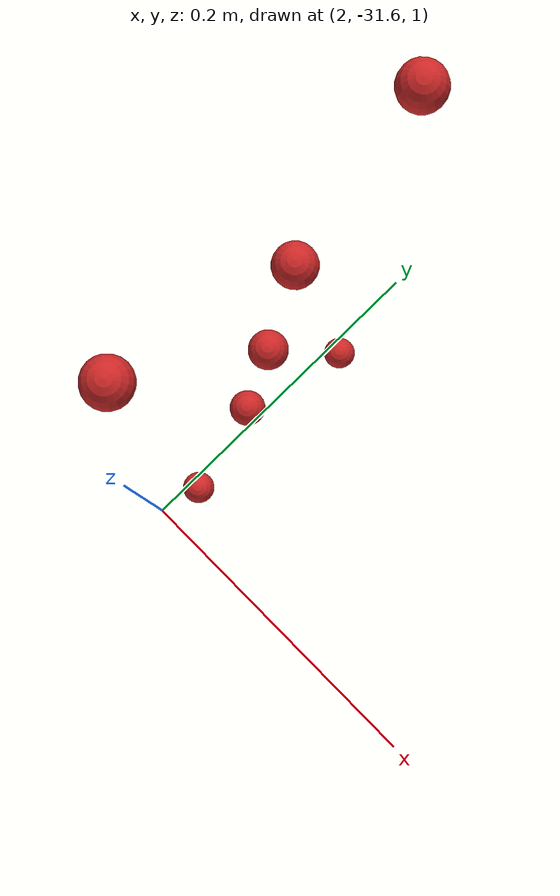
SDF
<sdf version="1.4">
 <world name="default">
  <model name="ground_plane">
   <static>1</static>
   <link name="link">
    <collision name="collision">
     <geometry><plane><normal>0 0 1</normal><size>100 100</size></plane></geometry>
     <surface><friction><ode><mu>100</mu><mu2>50</mu2></ode></friction></surface>
    </collision>
    <visual name="visual">
     <cast_shadows>0</cast_shadows>
     <geometry><plane><normal>0 0 1</normal><size>100 100</size></plane></geometry>
     <material>
      <script><uri>file://media/materials/scripts/gazebo.material</uri><name>Gazebo/Grey</name></script>
     </material>
    </visual>
    <velocity_decay><linear>0</linear><angular>0</angular></velocity_decay>
   </link>
  </model>
  <model name="apple394">
   <link name="my_apple">
    <inertial>
     <pose>2 0 0 0 -0 0</pose>
     <mass>1</mass>
     <inertia><ixx>1</ixx><ixy>0</ixy><ixz>0</ixz><iyy>1</iyy><iyz>0</iyz><izz>1</izz></inertia>
    </inertial>
    <collision name="my_apple_collision">
     <pose>2 0 1 0 -0 0</pose>
     <geometry><sphere><radius>0.01</radius></sphere></geometry>
    </collision>
    <visual name="my_apple_visual">
     <pose>2 0 1 0 -0 0</pose>
     <geometry><sphere><radius>0.01</radius></sphere></geometry>
     <material><script><name>Gazebo/Red</name><uri>__default__</uri></script></material>
    </visual>
    <gravity>0</gravity>
    <velocity_decay><linear>0</linear><angular>0</angular></velocity_decay>
   </link>
   <pose>0 -31.5741 -0.051035 0 -0 0</pose>
   <static>0</static>
  </model>
  <model name="apple396">
   <link name="my_apple">
    <inertial>
     <pose>2 0 0 0 -0 0</pose>
     <mass>1</mass>
     <inertia><ixx>1</ixx><ixy>0</ixy><ixz>0</ixz><iyy>1</iyy><iyz>0</iyz><izz>1</izz></inertia>
    </inertial>
    <collision name="my_apple_collision">
     <pose>2 0 1 0 -0 0</pose>
     <geometry><sphere><radius>0.01</radius></sphere></geometry>
    </collision>
    <visual name="my_apple_visual">
     <pose>2 0 1 0 -0 0</pose>
     <geometry><sphere><radius>0.01</radius></sphere></geometry>
     <material><script><name>Gazebo/Red</name><uri>__default__</uri></script></material>
    </visual>
    <gravity>0</gravity>
    <velocity_decay><linear>0</linear><angular>0</angular></velocity_decay>
   </link>
   <pose>0 -31.5238 0.074887 0 -0 0</pose>
   <static>0</static>
  </model>
  <model name="apple397">
   <link name="my_apple">
    <inertial>
     <pose>2 0 0 0 -0 0</pose>
     <mass>1</mass>
     <inertia><ixx>1</ixx><ixy>0</ixy><ixz>0</ixz><iyy>1</iyy><iyz>0</iyz><izz>1</izz></inertia>
    </inertial>
    <collision name="my_apple_collision">
     <pose>2 0 1 0 -0 0</pose>
     <geometry><sphere><radius>0.01</radius></sphere></geometry>
    </collision>
    <visual name="my_apple_visual">
     <pose>2 0 1 0 -0 0</pose>
     <geometry><sphere><radius>0.01</radius></sphere></geometry>
     <material><script><name>Gazebo/Red</name><uri>__default__</uri></script></material>
    </visual>
    <gravity>0</gravity>
    <velocity_decay><linear>0</linear><angular>0</angular></velocity_decay>
   </link>
   <pose>0 -31.5039 0.188023 0 -0 0</pose>
   <static>0</static>
  </model>
  <model name="apple398">
   <link name="my_apple">
    <inertial>
     <pose>2 0 0 0 -0 0</pose>
     <mass>1</mass>
     <inertia><ixx>1</ixx><ixy>0</ixy><ixz>0</ixz><iyy>1</iyy><iyz>0</iyz><izz>1</izz></inertia>
    </inertial>
    <collision name="my_apple_collision">
     <pose>2 0 1 0 -0 0</pose>
     <geometry><sphere><radius>0.01</radius></sphere></geometry>
    </collision>
    <visual name="my_apple_visual">
     <pose>2 0 1 0 -0 0</pose>
     <geometry><sphere><radius>0.01</radius></sphere></geometry>
     <material><script><name>Gazebo/Red</name><uri>__default__</uri></script></material>
    </visual>
    <gravity>0</gravity>
    <velocity_decay><linear>0</linear><angular>0</angular></velocity_decay>
   </link>
   <pose>0 -31.4846 0.313786 0 -0 0</pose>
   <static>0</static>
  </model>
  <model name="apple400">
   <link name="my_apple">
    <inertial>
     <pose>2 0 0 0 -0 0</pose>
     <mass>1</mass>
     <inertia><ixx>1</ixx><ixy>0</ixy><ixz>0</ixz><iyy>1</iyy><iyz>0</iyz><izz>1</izz></inertia>
    </inertial>
    <collision name="my_apple_collision">
     <pose>2 0 1 0 -0 0</pose>
     <geometry><sphere><radius>0.01</radius></sphere></geometry>
    </collision>
    <visual name="my_apple_visual">
     <pose>2 0 1 0 -0 0</pose>
     <geometry><sphere><radius>0.01</radius></sphere></geometry>
     <material><script><name>Gazebo/Red</name><uri>__default__</uri></script></material>
    </visual>
    <gravity>0</gravity>
    <velocity_decay><linear>0</linear><angular>0</angular></velocity_decay>
   </link>
   <pose>0 -31.4468 -0.064622 0 -0 0</pose>
   <static>0</static>
  </model>
  <model name="apple401">
   <link name="my_apple">
    <inertial>
     <pose>2 0 0 0 -0 0</pose>
     <mass>1</mass>
     <inertia><ixx>1</ixx><ixy>0</ixy><ixz>0</ixz><iyy>1</iyy><iyz>0</iyz><izz>1</izz></inertia>
    </inertial>
    <collision name="my_apple_collision">
     <pose>2 0 1 0 -0 0</pose>
     <geometry><sphere><radius>0.01</radius></sphere></geometry>
    </collision>
    <visual name="my_apple_visual">
     <pose>2 0 1 0 -0 0</pose>
     <geometry><sphere><radius>0.01</radius></sphere></geometry>
     <material><script><name>Gazebo/Red</name><uri>__default__</uri></script></material>
    </visual>
    <gravity>0</gravity>
    <velocity_decay><linear>0</linear><angular>0</angular></velocity_decay>
   </link>
   <pose>0 -31.4214 0.400168 0 -0 0</pose>
   <static>0</static>
  </model>
  <model name="apple416">
   <link name="my_apple">
    <inertial>
     <pose>2 0 0 0 -0 0</pose>
     <mass>1</mass>
     <inertia><ixx>1</ixx><ixy>0</ixy><ixz>0</ixz><iyy>1</iyy><iyz>0</iyz><izz>1</izz></inertia>
    </inertial>
    <collision name="my_apple_collision">
     <pose>2 0 1 0 -0 0</pose>
     <geometry><sphere><radius>0.01</radius></sphere></geometry>
    </collision>
    <visual name="my_apple_visual">
     <pose>2 0 1 0 -0 0</pose>
     <geometry><sphere><radius>0.01</radius></sphere></geometry>
     <material><script><name>Gazebo/Red</name><uri>__default__</uri></script></material>
    </visual>
    <gravity>0</gravity>
    <velocity_decay><linear>0</linear><angular>0</angular></velocity_decay>
   </link>
   <pose>0 -31.5732 0.411803 0 -0 0</pose>
   <static>0</static>
  </model>
 </world>
</sdf>
